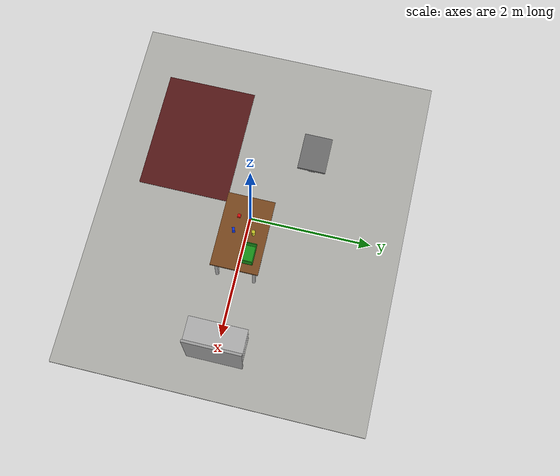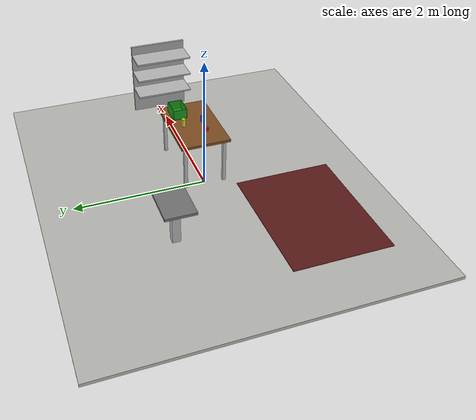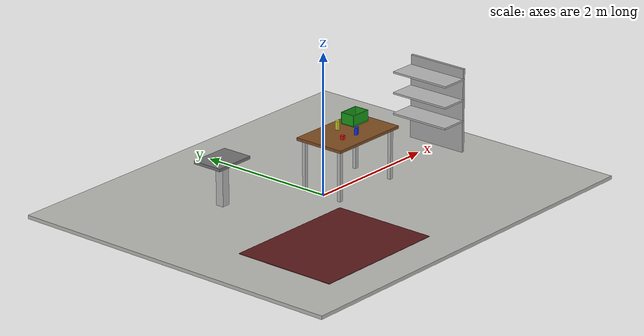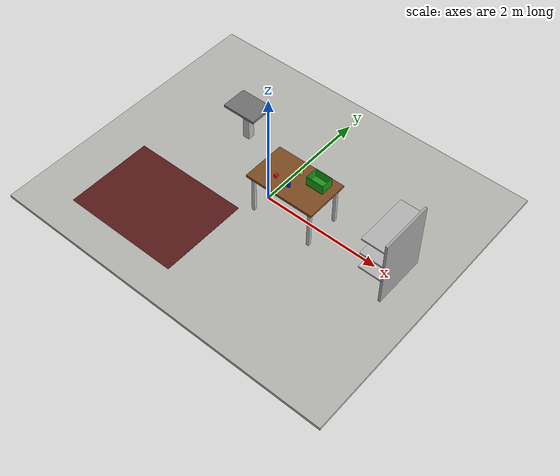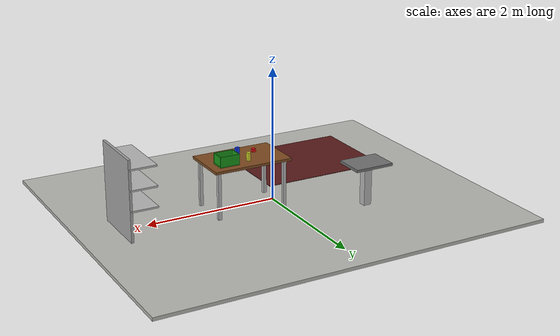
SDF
<sdf version='1.10'>
  <world name='robocup_home'>
    <gravity>0 0 -9.8100000000000005</gravity>
    <physics name='default_physics' type='ignored'>
      <max_step_size>0.001</max_step_size>
      <real_time_factor>1</real_time_factor>
      <real_time_update_rate>1000</real_time_update_rate>
    </physics>
    <plugin name='gz::sim::systems::Physics' filename='gz-sim-physics-system'/>
    <plugin name='gz::sim::systems::UserCommands' filename='gz-sim-user-commands-system'/>
    <plugin name='gz::sim::systems::SceneBroadcaster' filename='gz-sim-scene-broadcaster-system'/>
    <magnetic_field>5.5644999999999998e-06 2.2875799999999999e-05 -4.2388400000000002e-05</magnetic_field>
    <atmosphere type='adiabatic'/>
    <scene>
      <ambient>0.400000006 0.400000006 0.400000006 1</ambient>
      <background>0.699999988 0.699999988 0.699999988 1</background>
      <shadows>true</shadows>
    </scene>
    <model name='floor'>
      <static>true</static>
      <link name='floor_link'>
        <collision name='floor_collision'>
          <geometry>
            <box>
              <size>6 5 0.050000000000000003</size>
            </box>
          </geometry>
          <surface>
            <friction>
              <ode/>
            </friction>
            <bounce/>
            <contact/>
          </surface>
        </collision>
        <visual name='floor_visual'>
          <geometry>
            <box>
              <size>6 5 0.050000000000000003</size>
            </box>
          </geometry>
          <material>
            <ambient>0.720000029 0.720000029 0.699999988 1</ambient>
            <diffuse>0.720000029 0.720000029 0.699999988 1</diffuse>
          </material>
        </visual>
        <pose>0 0 -0.025000000000000001 0 0 0</pose>
        <inertial>
          <pose>0 0 0 0 0 0</pose>
          <mass>1</mass>
          <inertia>
            <ixx>1</ixx>
            <ixy>0</ixy>
            <ixz>0</ixz>
            <iyy>1</iyy>
            <iyz>0</iyz>
            <izz>1</izz>
          </inertia>
        </inertial>
        <enable_wind>false</enable_wind>
      </link>
      <pose>0 0 0 0 0 0</pose>
      <self_collide>false</self_collide>
    </model>
    <model name='carpet'>
      <static>true</static>
      <pose>-1.2 -1.2 0 0 0 0</pose>
      <link name='carpet_link'>
        <collision name='carpet_collision'>
          <pose>0 0 0.0040000000000000001 0 0 0</pose>
          <geometry>
            <box>
              <size>2 1.5 0.0080000000000000002</size>
            </box>
          </geometry>
          <surface>
            <friction>
              <ode/>
            </friction>
            <bounce/>
            <contact/>
          </surface>
        </collision>
        <visual name='carpet_visual'>
          <pose>0 0 0.0040000000000000001 0 0 0</pose>
          <geometry>
            <box>
              <size>2 1.5 0.0080000000000000002</size>
            </box>
          </geometry>
          <material>
            <ambient>0.25 0.0799999982 0.0799999982 1</ambient>
            <diffuse>0.349999994 0.100000001 0.100000001 1</diffuse>
          </material>
        </visual>
        <pose>0 0 0 0 0 0</pose>
        <inertial>
          <pose>0 0 0 0 0 0</pose>
          <mass>1</mass>
          <inertia>
            <ixx>1</ixx>
            <ixy>0</ixy>
            <ixz>0</ixz>
            <iyy>1</iyy>
            <iyz>0</iyz>
            <izz>1</izz>
          </inertia>
        </inertial>
        <enable_wind>false</enable_wind>
      </link>
      <self_collide>false</self_collide>
    </model>
    <model name='main_table'>
      <static>true</static>
      <pose>0.5 0 0 0 0 0</pose>
      <link name='table_link'>
        <collision name='top_collision'>
          <pose>0 0 0.72999999999999998 0 0 0</pose>
          <geometry>
            <box>
              <size>1.2 0.75 0.040000000000000001</size>
            </box>
          </geometry>
          <surface>
            <friction>
              <ode/>
            </friction>
            <bounce/>
            <contact/>
          </surface>
        </collision>
        <visual name='top_visual'>
          <pose>0 0 0.72999999999999998 0 0 0</pose>
          <geometry>
            <box>
              <size>1.2 0.75 0.040000000000000001</size>
            </box>
          </geometry>
          <material>
            <ambient>0.379999995 0.219999999 0.100000001 1</ambient>
            <diffuse>0.5 0.300000012 0.129999995 1</diffuse>
          </material>
        </visual>
        <collision name='leg1_collision'>
          <pose>0.52000000000000002 0.29999999999999999 0.35499999999999998 0 0 0</pose>
          <geometry>
            <box>
              <size>0.050000000000000003 0.050000000000000003 0.70999999999999996</size>
            </box>
          </geometry>
          <surface>
            <friction>
              <ode/>
            </friction>
            <bounce/>
            <contact/>
          </surface>
        </collision>
        <visual name='leg1_visual'>
          <pose>0.52000000000000002 0.29999999999999999 0.35499999999999998 0 0 0</pose>
          <geometry>
            <box>
              <size>0.050000000000000003 0.050000000000000003 0.70999999999999996</size>
            </box>
          </geometry>
        </visual>
        <collision name='leg2_collision'>
          <pose>0.52000000000000002 -0.29999999999999999 0.35499999999999998 0 0 0</pose>
          <geometry>
            <box>
              <size>0.050000000000000003 0.050000000000000003 0.70999999999999996</size>
            </box>
          </geometry>
          <surface>
            <friction>
              <ode/>
            </friction>
            <bounce/>
            <contact/>
          </surface>
        </collision>
        <visual name='leg2_visual'>
          <pose>0.52000000000000002 -0.29999999999999999 0.35499999999999998 0 0 0</pose>
          <geometry>
            <box>
              <size>0.050000000000000003 0.050000000000000003 0.70999999999999996</size>
            </box>
          </geometry>
        </visual>
        <collision name='leg3_collision'>
          <pose>-0.52000000000000002 0.29999999999999999 0.35499999999999998 0 0 0</pose>
          <geometry>
            <box>
              <size>0.050000000000000003 0.050000000000000003 0.70999999999999996</size>
            </box>
          </geometry>
          <surface>
            <friction>
              <ode/>
            </friction>
            <bounce/>
            <contact/>
          </surface>
        </collision>
        <visual name='leg3_visual'>
          <pose>-0.52000000000000002 0.29999999999999999 0.35499999999999998 0 0 0</pose>
          <geometry>
            <box>
              <size>0.050000000000000003 0.050000000000000003 0.70999999999999996</size>
            </box>
          </geometry>
        </visual>
        <collision name='leg4_collision'>
          <pose>-0.52000000000000002 -0.29999999999999999 0.35499999999999998 0 0 0</pose>
          <geometry>
            <box>
              <size>0.050000000000000003 0.050000000000000003 0.70999999999999996</size>
            </box>
          </geometry>
          <surface>
            <friction>
              <ode/>
            </friction>
            <bounce/>
            <contact/>
          </surface>
        </collision>
        <visual name='leg4_visual'>
          <pose>-0.52000000000000002 -0.29999999999999999 0.35499999999999998 0 0 0</pose>
          <geometry>
            <box>
              <size>0.050000000000000003 0.050000000000000003 0.70999999999999996</size>
            </box>
          </geometry>
        </visual>
        <pose>0 0 0 0 0 0</pose>
        <inertial>
          <pose>0 0 0 0 0 0</pose>
          <mass>1</mass>
          <inertia>
            <ixx>1</ixx>
            <ixy>0</ixy>
            <ixz>0</ixz>
            <iyy>1</iyy>
            <iyz>0</iyz>
            <izz>1</izz>
          </inertia>
        </inertial>
        <enable_wind>false</enable_wind>
      </link>
      <self_collide>false</self_collide>
    </model>
    <model name='red_pick_block'>
      <pose>0.25 -0.12 0.77499942003274491 1.208271901802928e-18 1.2340603638339933e-18 1.7403284178298221e-18</pose>
      <link name='block_link'>
        <inertial>
          <mass>0.10000000000000001</mass>
          <inertia>
            <ixx>4.1699999999999997e-05</ixx>
            <iyy>4.1699999999999997e-05</iyy>
            <izz>4.1699999999999997e-05</izz>
            <ixy>0</ixy>
            <ixz>0</ixz>
            <iyz>0</iyz>
          </inertia>
          <pose>0 0 0 0 0 0</pose>
        </inertial>
        <collision name='collision'>
          <geometry>
            <box>
              <size>0.050000000000000003 0.050000000000000003 0.050000000000000003</size>
            </box>
          </geometry>
          <surface>
            <friction>
              <ode/>
            </friction>
            <bounce/>
            <contact/>
          </surface>
        </collision>
        <visual name='visual'>
          <geometry>
            <box>
              <size>0.050000000000000003 0.050000000000000003 0.050000000000000003</size>
            </box>
          </geometry>
          <material>
            <ambient>0.800000012 0.0500000007 0.0500000007 1</ambient>
            <diffuse>0.899999976 0.0500000007 0.0500000007 1</diffuse>
          </material>
        </visual>
        <pose>0 0 0 0 0 0</pose>
        <enable_wind>false</enable_wind>
      </link>
      <static>false</static>
      <self_collide>false</self_collide>
    </model>
    <model name='blue_pick_block'>
      <pose>0.5 -0.14999999999999999 0.79999942470744845 7.3644932821315194e-19 1.1995293316575284e-18 0.35000000000000037</pose>
      <link name='block_link'>
        <inertial>
          <mass>0.14999999999999999</mass>
          <inertia>
            <ixx>0.00020000000000000001</ixx>
            <iyy>0.00020000000000000001</iyy>
            <izz>0.0001</izz>
            <ixy>0</ixy>
            <ixz>0</ixz>
            <iyz>0</iyz>
          </inertia>
          <pose>0 0 0 0 0 0</pose>
        </inertial>
        <collision name='collision'>
          <geometry>
            <box>
              <size>0.059999999999999998 0.040000000000000001 0.10000000000000001</size>
            </box>
          </geometry>
          <surface>
            <friction>
              <ode/>
            </friction>
            <bounce/>
            <contact/>
          </surface>
        </collision>
        <visual name='visual'>
          <geometry>
            <box>
              <size>0.059999999999999998 0.040000000000000001 0.10000000000000001</size>
            </box>
          </geometry>
          <material>
            <ambient>0.0500000007 0.150000006 0.800000012 1</ambient>
            <diffuse>0.0500000007 0.200000003 0.899999976 1</diffuse>
          </material>
        </visual>
        <pose>0 0 0 0 0 0</pose>
        <enable_wind>false</enable_wind>
      </link>
      <static>false</static>
      <self_collide>false</self_collide>
    </model>
    <model name='pick_can'>
      <pose>0.47999999999999998 0.16 0.8099994281162729 4.7734260471424671e-18 -3.8106371209160064e-18 9.8894034468034294e-25</pose>
      <link name='can_link'>
        <inertial>
          <mass>0.20000000000000001</mass>
          <pose>0 0 0 0 0 0</pose>
          <inertia>
            <ixx>1</ixx>
            <ixy>0</ixy>
            <ixz>0</ixz>
            <iyy>1</iyy>
            <iyz>0</iyz>
            <izz>1</izz>
          </inertia>
        </inertial>
        <collision name='collision'>
          <geometry>
            <cylinder>
              <radius>0.029999999999999999</radius>
              <length>0.12</length>
            </cylinder>
          </geometry>
          <surface>
            <friction>
              <ode/>
            </friction>
            <bounce/>
            <contact/>
          </surface>
        </collision>
        <visual name='visual'>
          <geometry>
            <cylinder>
              <radius>0.029999999999999999</radius>
              <length>0.12</length>
            </cylinder>
          </geometry>
          <material>
            <ambient>0.699999988 0.699999988 0.119999997 1</ambient>
            <diffuse>0.800000012 0.800000012 0.150000006 1</diffuse>
          </material>
        </visual>
        <pose>0 0 0 0 0 0</pose>
        <enable_wind>false</enable_wind>
      </link>
      <static>false</static>
      <self_collide>false</self_collide>
    </model>
    <model name='placement_box'>
      <static>true</static>
      <pose>0.81999999999999995 0.14999999999999999 0 0 0 0</pose>
      <link name='box_link'>
        <collision name='bottom_collision'>
          <pose>0 0 0.76000000000000001 0 0 0</pose>
          <geometry>
            <box>
              <size>0.29999999999999999 0.22 0.02</size>
            </box>
          </geometry>
          <surface>
            <friction>
              <ode/>
            </friction>
            <bounce/>
            <contact/>
          </surface>
        </collision>
        <visual name='bottom_visual'>
          <pose>0 0 0.76000000000000001 0 0 0</pose>
          <geometry>
            <box>
              <size>0.29999999999999999 0.22 0.02</size>
            </box>
          </geometry>
          <material>
            <ambient>0.0799999982 0.449999988 0.0799999982 1</ambient>
            <diffuse>0.100000001 0.600000024 0.100000001 1</diffuse>
          </material>
        </visual>
        <collision name='front_collision'>
          <pose>0 -0.105 0.83499999999999996 0 0 0</pose>
          <geometry>
            <box>
              <size>0.29999999999999999 0.01 0.14999999999999999</size>
            </box>
          </geometry>
          <surface>
            <friction>
              <ode/>
            </friction>
            <bounce/>
            <contact/>
          </surface>
        </collision>
        <visual name='front_visual'>
          <pose>0 -0.105 0.83499999999999996 0 0 0</pose>
          <geometry>
            <box>
              <size>0.29999999999999999 0.01 0.14999999999999999</size>
            </box>
          </geometry>
          <material>
            <ambient>0.0799999982 0.449999988 0.0799999982 1</ambient>
            <diffuse>0.100000001 0.600000024 0.100000001 1</diffuse>
          </material>
        </visual>
        <collision name='back_collision'>
          <pose>0 0.105 0.83499999999999996 0 0 0</pose>
          <geometry>
            <box>
              <size>0.29999999999999999 0.01 0.14999999999999999</size>
            </box>
          </geometry>
          <surface>
            <friction>
              <ode/>
            </friction>
            <bounce/>
            <contact/>
          </surface>
        </collision>
        <visual name='back_visual'>
          <pose>0 0.105 0.83499999999999996 0 0 0</pose>
          <geometry>
            <box>
              <size>0.29999999999999999 0.01 0.14999999999999999</size>
            </box>
          </geometry>
          <material>
            <ambient>0.0799999982 0.449999988 0.0799999982 1</ambient>
            <diffuse>0.100000001 0.600000024 0.100000001 1</diffuse>
          </material>
        </visual>
        <collision name='left_collision'>
          <pose>-0.14499999999999999 0 0.83499999999999996 0 0 0</pose>
          <geometry>
            <box>
              <size>0.01 0.20000000000000001 0.14999999999999999</size>
            </box>
          </geometry>
          <surface>
            <friction>
              <ode/>
            </friction>
            <bounce/>
            <contact/>
          </surface>
        </collision>
        <visual name='left_visual'>
          <pose>-0.14499999999999999 0 0.83499999999999996 0 0 0</pose>
          <geometry>
            <box>
              <size>0.01 0.20000000000000001 0.14999999999999999</size>
            </box>
          </geometry>
          <material>
            <ambient>0.0799999982 0.449999988 0.0799999982 1</ambient>
            <diffuse>0.100000001 0.600000024 0.100000001 1</diffuse>
          </material>
        </visual>
        <collision name='right_collision'>
          <pose>0.14499999999999999 0 0.83499999999999996 0 0 0</pose>
          <geometry>
            <box>
              <size>0.01 0.20000000000000001 0.14999999999999999</size>
            </box>
          </geometry>
          <surface>
            <friction>
              <ode/>
            </friction>
            <bounce/>
            <contact/>
          </surface>
        </collision>
        <visual name='right_visual'>
          <pose>0.14499999999999999 0 0.83499999999999996 0 0 0</pose>
          <geometry>
            <box>
              <size>0.01 0.20000000000000001 0.14999999999999999</size>
            </box>
          </geometry>
          <material>
            <ambient>0.0799999982 0.449999988 0.0799999982 1</ambient>
            <diffuse>0.100000001 0.600000024 0.100000001 1</diffuse>
          </material>
        </visual>
        <pose>0 0 0 0 0 0</pose>
        <inertial>
          <pose>0 0 0 0 0 0</pose>
          <mass>1</mass>
          <inertia>
            <ixx>1</ixx>
            <ixy>0</ixy>
            <ixz>0</ixz>
            <iyy>1</iyy>
            <iyz>0</iyz>
            <izz>1</izz>
          </inertia>
        </inertial>
        <enable_wind>false</enable_wind>
      </link>
      <self_collide>false</self_collide>
    </model>
    <model name='side_table'>
      <static>true</static>
      <pose>-1.1000000000000001 0.80000000000000004 0 0 0 0</pose>
      <link name='side_table_link'>
        <collision name='top_collision'>
          <pose>0 0 0.63 0 0 0</pose>
          <geometry>
            <box>
              <size>0.59999999999999998 0.45000000000000001 0.040000000000000001</size>
            </box>
          </geometry>
          <surface>
            <friction>
              <ode/>
            </friction>
            <bounce/>
            <contact/>
          </surface>
        </collision>
        <visual name='top_visual'>
          <pose>0 0 0.63 0 0 0</pose>
          <geometry>
            <box>
              <size>0.59999999999999998 0.45000000000000001 0.040000000000000001</size>
            </box>
          </geometry>
          <material>
            <ambient>0.300000012 0.300000012 0.300000012 1</ambient>
            <diffuse>0.449999988 0.449999988 0.449999988 1</diffuse>
          </material>
        </visual>
        <collision name='pedestal_collision'>
          <pose>0 0 0.29999999999999999 0 0 0</pose>
          <geometry>
            <box>
              <size>0.12 0.12 0.59999999999999998</size>
            </box>
          </geometry>
          <surface>
            <friction>
              <ode/>
            </friction>
            <bounce/>
            <contact/>
          </surface>
        </collision>
        <visual name='pedestal_visual'>
          <pose>0 0 0.29999999999999999 0 0 0</pose>
          <geometry>
            <box>
              <size>0.12 0.12 0.59999999999999998</size>
            </box>
          </geometry>
        </visual>
        <pose>0 0 0 0 0 0</pose>
        <inertial>
          <pose>0 0 0 0 0 0</pose>
          <mass>1</mass>
          <inertia>
            <ixx>1</ixx>
            <ixy>0</ixy>
            <ixz>0</ixz>
            <iyy>1</iyy>
            <iyz>0</iyz>
            <izz>1</izz>
          </inertia>
        </inertial>
        <enable_wind>false</enable_wind>
      </link>
      <self_collide>false</self_collide>
    </model>
    <model name='cabinet'>
      <static>true</static>
      <pose>2.2000000000000002 0 0 0 0 0</pose>
      <link name='cabinet_link'>
        <collision name='back_collision'>
          <pose>0.20000000000000001 0 0.59999999999999998 0 0 0</pose>
          <geometry>
            <box>
              <size>0.040000000000000001 0.90000000000000002 1.2</size>
            </box>
          </geometry>
          <surface>
            <friction>
              <ode/>
            </friction>
            <bounce/>
            <contact/>
          </surface>
        </collision>
        <visual name='back_visual'>
          <pose>0.20000000000000001 0 0.59999999999999998 0 0 0</pose>
          <geometry>
            <box>
              <size>0.040000000000000001 0.90000000000000002 1.2</size>
            </box>
          </geometry>
          <material>
            <ambient>0.550000012 0.550000012 0.550000012 1</ambient>
            <diffuse>0.649999976 0.649999976 0.649999976 1</diffuse>
          </material>
        </visual>
        <collision name='shelf1_collision'>
          <pose>0 0 0.45000000000000001 0 0 0</pose>
          <geometry>
            <box>
              <size>0.40000000000000002 0.90000000000000002 0.025000000000000001</size>
            </box>
          </geometry>
          <surface>
            <friction>
              <ode/>
            </friction>
            <bounce/>
            <contact/>
          </surface>
        </collision>
        <visual name='shelf1_visual'>
          <pose>0 0 0.45000000000000001 0 0 0</pose>
          <geometry>
            <box>
              <size>0.40000000000000002 0.90000000000000002 0.025000000000000001</size>
            </box>
          </geometry>
        </visual>
        <collision name='shelf2_collision'>
          <pose>0 0 0.75 0 0 0</pose>
          <geometry>
            <box>
              <size>0.40000000000000002 0.90000000000000002 0.025000000000000001</size>
            </box>
          </geometry>
          <surface>
            <friction>
              <ode/>
            </friction>
            <bounce/>
            <contact/>
          </surface>
        </collision>
        <visual name='shelf2_visual'>
          <pose>0 0 0.75 0 0 0</pose>
          <geometry>
            <box>
              <size>0.40000000000000002 0.90000000000000002 0.025000000000000001</size>
            </box>
          </geometry>
        </visual>
        <collision name='shelf3_collision'>
          <pose>0 0 1.05 0 0 0</pose>
          <geometry>
            <box>
              <size>0.40000000000000002 0.90000000000000002 0.025000000000000001</size>
            </box>
          </geometry>
          <surface>
            <friction>
              <ode/>
            </friction>
            <bounce/>
            <contact/>
          </surface>
        </collision>
        <visual name='shelf3_visual'>
          <pose>0 0 1.05 0 0 0</pose>
          <geometry>
            <box>
              <size>0.40000000000000002 0.90000000000000002 0.025000000000000001</size>
            </box>
          </geometry>
        </visual>
        <pose>0 0 0 0 0 0</pose>
        <inertial>
          <pose>0 0 0 0 0 0</pose>
          <mass>1</mass>
          <inertia>
            <ixx>1</ixx>
            <ixy>0</ixy>
            <ixz>0</ixz>
            <iyy>1</iyy>
            <iyz>0</iyz>
            <izz>1</izz>
          </inertia>
        </inertial>
        <enable_wind>false</enable_wind>
      </link>
      <self_collide>false</self_collide>
    </model>
    <light name='sun' type='directional'>
      <pose>0 0 8 0 0 0</pose>
      <cast_shadows>true</cast_shadows>
      <intensity>1</intensity>
      <direction>-0.5 0.20000000000000001 -1</direction>
      <diffuse>0.899999976 0.899999976 0.899999976 1</diffuse>
      <specular>0.200000003 0.200000003 0.200000003 1</specular>
      <attenuation>
        <range>10</range>
        <linear>1</linear>
        <constant>1</constant>
        <quadratic>0</quadratic>
      </attenuation>
      <spot>
        <inner_angle>0</inner_angle>
        <outer_angle>0</outer_angle>
        <falloff>0</falloff>
      </spot>
    </light>
  </world>
</sdf>
